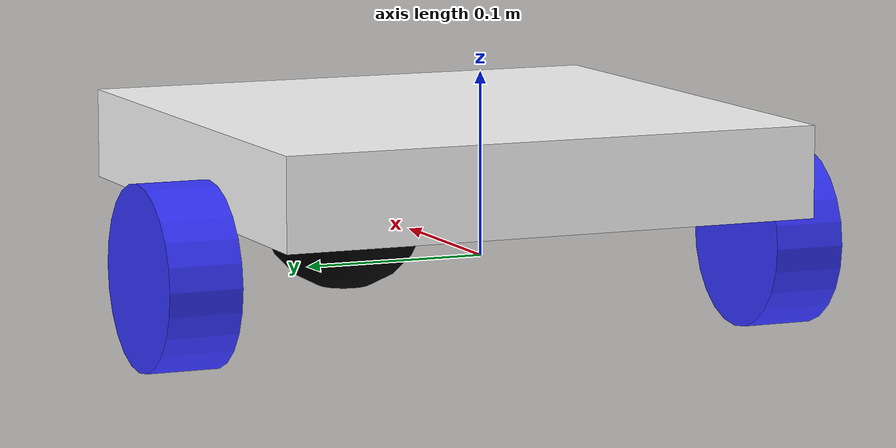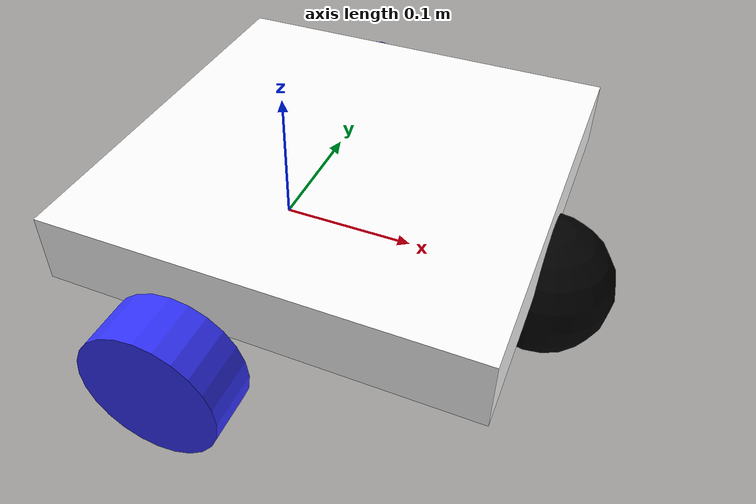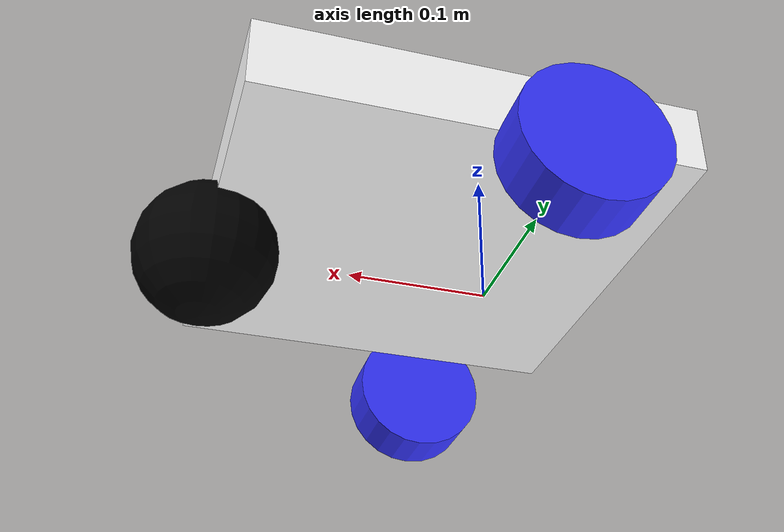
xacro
<?xml version="1.0"?>
<robot xmlns:xacro="http://www.ros.org/wiki/xacro">

    <xacro:include filename="inertial_macros.xacro"/>

    <material name="white">
        <color rgba="1 1 1 1" />
    </material>
    <material name="orange">
        <color rgba="1 0.3 0.1 1" />
    </material>
    <material name="blue">
        <color rgba="0.2 0.2 1 1" />
    </material>
    <material name="black">
        <color rgba="0 0 0 1" />
    </material>
    <material name="red">
        <color rgba="1 0 0 1" />
    </material>

    <!-- Base link -->
    <link name="base_link">

    </link>

    <!-- Base footprint -->
    <joint name="base_footprint_joint" type="fixed">
        <parent link="base_link" />
        <child link="base_footprint" />
        <origin xyz="0 0 0" rpy="0 0 0"/>
    </joint>

    <link name="base_footprint">
    </link>

    <!-- Chassis link -->
    <joint name="chassis_joint" type="fixed">
        <parent link="base_link" />
        <child link="chassis" />
        <origin xyz="-0.1 0 0" />
    </joint>

    <link name="chassis">
        <visual>
            <origin xyz="0.15 0 0.05" />
            <geometry>
                <box size="0.3 0.3 0.05" />
            </geometry>
            <material name="white" />
        </visual>
        <collision>
            <origin xyz="0.15 0 0.075" />
            <geometry>
                <box size="0.3 0.3 0.05" />
            </geometry>
        </collision>
        <xacro:inertial_box mass="1" x="0.3" y="0.3" z="0.05">
            <origin xyz="0.15 0 0.075" rpy="0 0 0"/>
        </xacro:inertial_box>
    </link>

    <!-- Left wheel link -->
    <joint name="left_wheel_joint" type="continuous">
        <parent link="base_link" />
        <child link="left_wheel" />
        <origin xyz="0 0.175 0" rpy="-${pi/2} 0 0" />
        <axis xyz="0 0 1" />
    </joint>

    <link name="left_wheel">
        <visual>
            <geometry>
                <cylinder radius="0.05" length="0.04" />
            </geometry>
            <material name="blue" />
        </visual>
        <collision>
            <geometry>
                <cylinder radius="0.05" length="0.04" />
            </geometry>
        </collision>
        <xacro:inertial_cylinder mass="1" length="0.04" radius="0.05">
            <origin xyz="0 0 0" rpy="0 0 0"/>
        </xacro:inertial_cylinder>
    </link>

    <joint name="right_wheel_joint" type="continuous">
        <parent link="base_link" />
        <child link="right_wheel" />
        <origin xyz="0 -0.175 0" rpy="${pi/2} 0 0" />
        <axis xyz="0 0 -1" />
    </joint>

    <link name="right_wheel">
        <visual>
            <geometry>
                <cylinder radius="0.05" length="0.04" />
            </geometry>
            <material name="blue" />
        </visual>
        <collision>
            <geometry>
                <cylinder radius="0.05" length="0.04" />
            </geometry>
        </collision>
        <xacro:inertial_cylinder mass="1" length="0.04" radius="0.05">
            <origin xyz="0 0 0" rpy="0 0 0"/>
        </xacro:inertial_cylinder>
    </link>

    <!-- Castor wheel -->
    <joint name="caster_wheel_joint" type="fixed">
        <parent link="chassis"/>
        <child link="caster_wheel"/>
        <origin xyz="0.3 0 0"/>
    </joint>

    <link name="caster_wheel">
        <visual>
            <geometry>
                <sphere radius="0.05"/>
            </geometry>
            <material name="black"/>
        </visual>
        <collision>
            <geometry>
                <sphere radius="0.05"/>
            </geometry>
        </collision>
        <xacro:inertial_sphere mass="4" radius="0.05">
            <origin xyz="0 0 0" rpy="0 0 0"/>
        </xacro:inertial_sphere>
    </link>

    <gazebo reference="chassis">
        <material>Gazebo/White</material>
    </gazebo>

    <gazebo reference="left_wheel">
        <material>Gazebo/Blue</material>
    </gazebo>

    <gazebo reference="right_wheel">
        <material>Gazebo/Blue</material>
    </gazebo>

    <gazebo reference="caster_wheel">
        <material>Gazebo/Black</material>
        <mu1>0.0001</mu1>
        <mu2>0.0001</mu2>
    </gazebo>
</robot>
